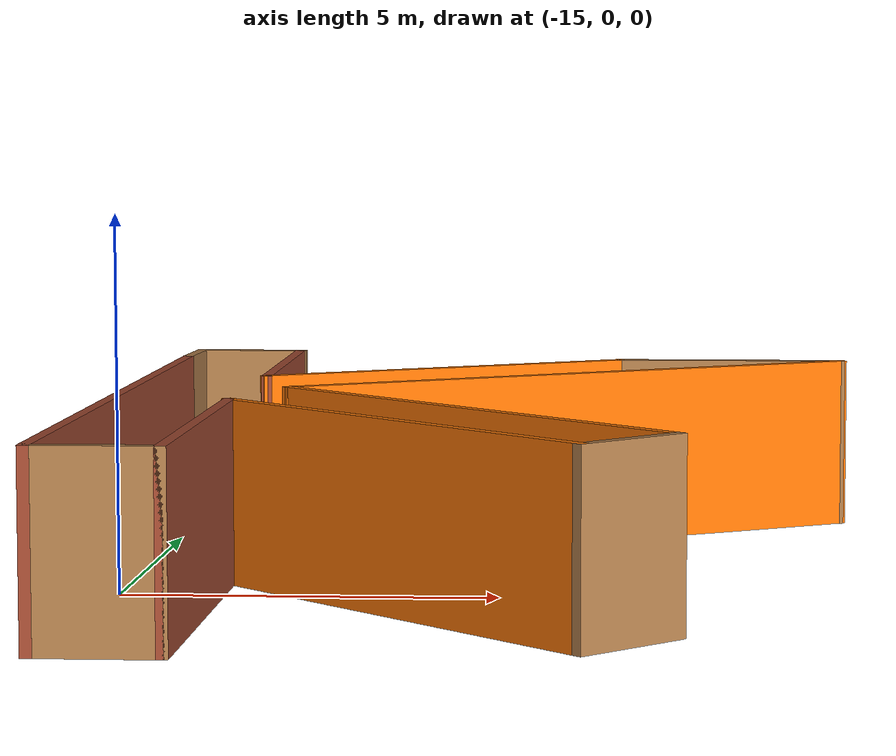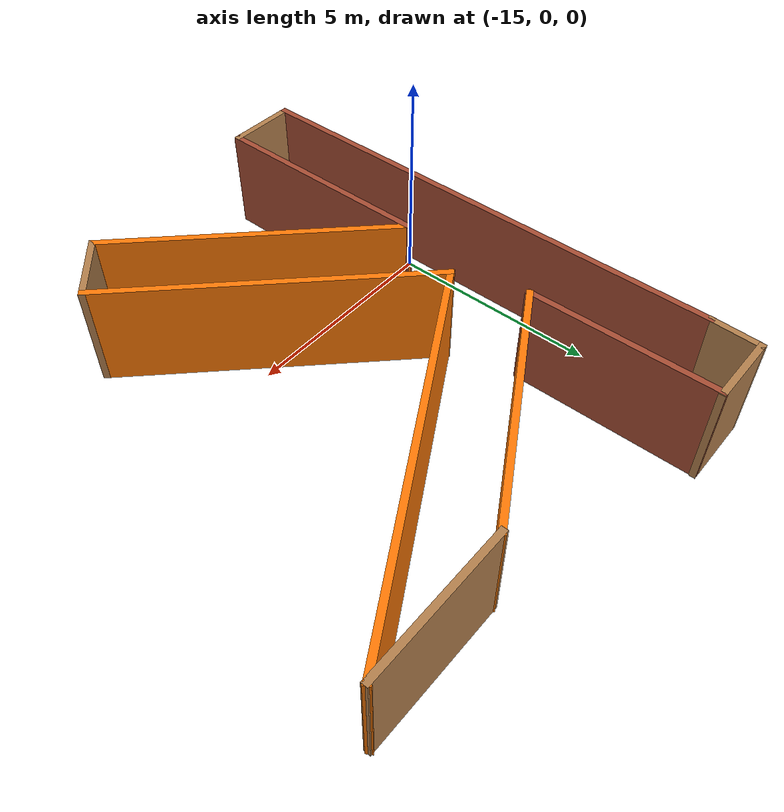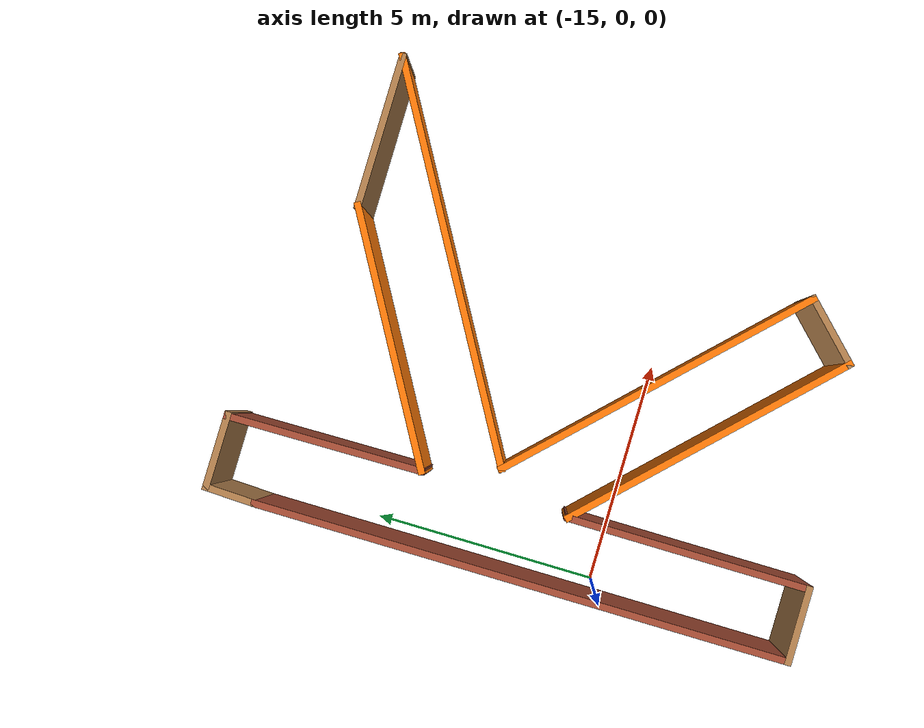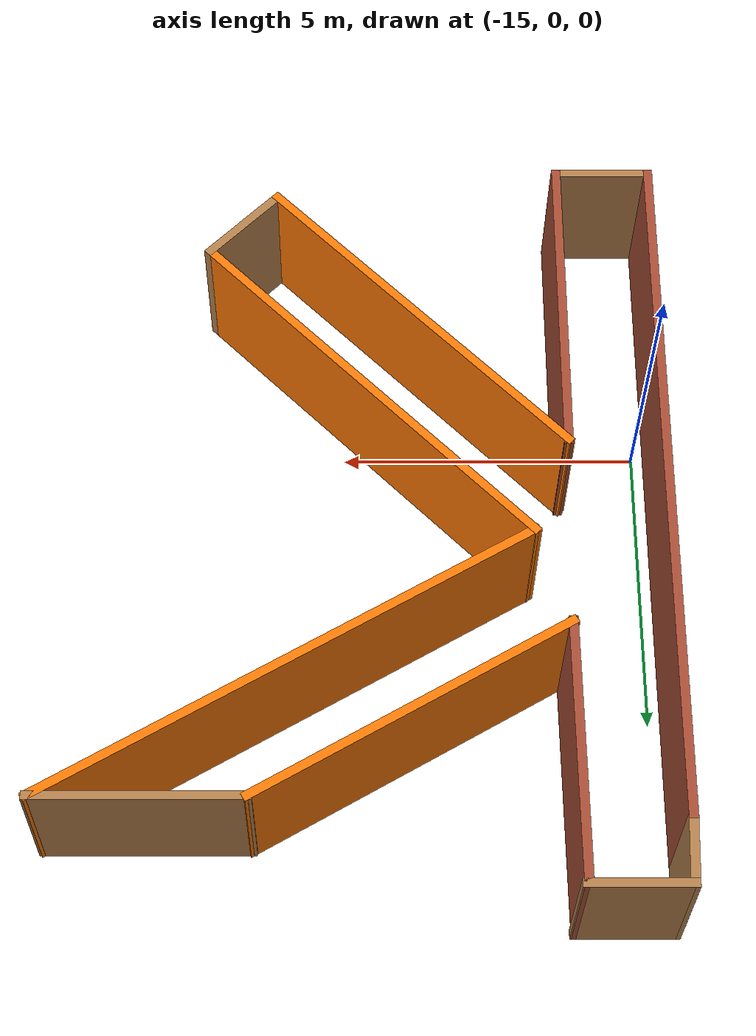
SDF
<?xml version='1.0'?>
<sdf version='1.6'>
  <model name='k_map'>
    <pose frame=''>-10.2215 2.08291 0 0 -0 0</pose>
    <link name='Wall_0'>
      <collision name='Wall_0_Collision'>
        <geometry>
          <box>
            <size>12 0.15 2.5</size>
          </box>
        </geometry>
        <pose frame=''>0 0 1.25 0 -0 0</pose>
      </collision>
      <visual name='Wall_0_Visual'>
        <pose frame=''>0 0 1.25 0 -0 0</pose>
        <geometry>
          <box>
            <size>12 0.15 2.5</size>
          </box>
        </geometry>
        <material>
          <script>
            <uri>file://media/materials/scripts/gazebo.material</uri>
            <name>Gazebo/Bricks</name>
          </script>
          <ambient>1 1 1 1</ambient>
        </material>
        <meta>
          <layer>0</layer>
        </meta>
      </visual>
      <pose frame=''>-5.05323 -0.546651 0 0 0 -1.5708</pose>
    </link>
    <link name='Wall_1'>
      <collision name='Wall_1_Collision'>
        <geometry>
          <box>
            <size>1.75 0.15 2.5</size>
          </box>
        </geometry>
        <pose frame=''>0 0 1.25 0 -0 0</pose>
      </collision>
      <visual name='Wall_1_Visual'>
        <pose frame=''>0 0 1.25 0 -0 0</pose>
        <geometry>
          <box>
            <size>1.75 0.15 2.5</size>
          </box>
        </geometry>
        <material>
          <script>
            <uri>file://media/materials/scripts/gazebo.material</uri>
            <name>Gazebo/Wood</name>
          </script>
          <ambient>1 1 1 1</ambient>
        </material>
        <meta>
          <layer>0</layer>
        </meta>
      </visual>
      <pose frame=''>-4.25323 -6.47165 0 0 -0 0</pose>
    </link>
    <link name='Wall_10'>
      <collision name='Wall_10_Collision'>
        <geometry>
          <box>
            <size>1.75 0.15 2.5</size>
          </box>
        </geometry>
        <pose frame=''>0 0 1.25 0 -0 0</pose>
      </collision>
      <visual name='Wall_10_Visual'>
        <pose frame=''>0 0 1.25 0 -0 0</pose>
        <geometry>
          <box>
            <size>1.75 0.15 2.5</size>
          </box>
        </geometry>
        <material>
          <script>
            <uri>file://media/materials/scripts/gazebo.material</uri>
            <name>Gazebo/Wood</name>
          </script>
          <ambient>1 1 1 1</ambient>
        </material>
        <meta>
          <layer>0</layer>
        </meta>
      </visual>
      <pose frame=''>-4.21074 6.46879 0 0 -0 3.14159</pose>
    </link>
    <link name='Wall_14'>
      <collision name='Wall_14_Collision'>
        <geometry>
          <box>
            <size>1.24127 0.15 2.5</size>
          </box>
        </geometry>
        <pose frame=''>0 0 1.25 0 -0 0</pose>
      </collision>
      <visual name='Wall_14_Visual'>
        <pose frame=''>0 0 1.25 0 -0 0</pose>
        <geometry>
          <box>
            <size>1.24127 0.15 2.5</size>
          </box>
        </geometry>
        <material>
          <script>
            <uri>file://media/materials/scripts/gazebo.material</uri>
            <name>Gazebo/Wood</name>
          </script>
          <ambient>1 1 1 1</ambient>
        </material>
        <meta>
          <layer>0</layer>
        </meta>
      </visual>
      <pose frame=''>-5.03198 5.92357 0 0 -0 1.53185</pose>
    </link>
    <link name='Wall_2'>
      <collision name='Wall_2_Collision'>
        <geometry>
          <box>
            <size>5.5 0.15 2.5</size>
          </box>
        </geometry>
        <pose frame=''>0 0 1.25 0 -0 0</pose>
      </collision>
      <visual name='Wall_2_Visual'>
        <pose frame=''>0 0 1.25 0 -0 0</pose>
        <geometry>
          <box>
            <size>5.5 0.15 2.5</size>
          </box>
        </geometry>
        <material>
          <script>
            <uri>file://media/materials/scripts/gazebo.material</uri>
            <name>Gazebo/Bricks</name>
          </script>
          <ambient>1 1 1 1</ambient>
        </material>
        <meta>
          <layer>0</layer>
        </meta>
      </visual>
      <pose frame=''>-3.45323 -3.79665 0 0 -0 1.5708</pose>
    </link>
    <link name='Wall_3'>
      <collision name='Wall_3_Collision'>
        <geometry>
          <box>
            <size>7 0.15 2.5</size>
          </box>
        </geometry>
        <pose frame=''>0 0 1.25 0 -0 0</pose>
      </collision>
      <visual name='Wall_3_Visual'>
        <pose frame=''>0 0 1.25 0 -0 0</pose>
        <geometry>
          <box>
            <size>7 0.15 2.5</size>
          </box>
        </geometry>
        <material>
          <script>
            <uri>file://media/materials/scripts/gazebo.material</uri>
            <name>Gazebo/Grey</name>
          </script>
          <ambient>0.996078 0.47451 0.0196078 1</ambient>
        </material>
        <meta>
          <layer>0</layer>
        </meta>
      </visual>
      <pose frame=''>-1.03139 -3.54349 0 0 0 -0.785398</pose>
    </link>
    <link name='Wall_4'>
      <collision name='Wall_4_Collision'>
        <geometry>
          <box>
            <size>1.75 0.15 2.5</size>
          </box>
        </geometry>
        <pose frame=''>0 0 1.25 0 -0 0</pose>
      </collision>
      <visual name='Wall_4_Visual'>
        <pose frame=''>0 0 1.25 0 -0 0</pose>
        <geometry>
          <box>
            <size>1.75 0.15 2.5</size>
          </box>
        </geometry>
        <material>
          <script>
            <uri>file://media/materials/scripts/gazebo.material</uri>
            <name>Gazebo/Wood</name>
          </script>
          <ambient>1 1 1 1</ambient>
        </material>
        <meta>
          <layer>0</layer>
        </meta>
      </visual>
      <pose frame=''>1.95614 -5.39965 0 0 -0 0.785398</pose>
    </link>
    <link name='Wall_5'>
      <collision name='Wall_5_Collision'>
        <geometry>
          <box>
            <size>7.75 0.15 2.5</size>
          </box>
        </geometry>
        <pose frame=''>0 0 1.25 0 -0 0</pose>
      </collision>
      <visual name='Wall_5_Visual'>
        <pose frame=''>0 0 1.25 0 -0 0</pose>
        <geometry>
          <box>
            <size>7.75 0.15 2.5</size>
          </box>
        </geometry>
        <material>
          <script>
            <uri>file://media/materials/scripts/gazebo.material</uri>
            <name>Gazebo/Grey</name>
          </script>
          <ambient>0.996078 0.47451 0.0196078 1</ambient>
        </material>
        <meta>
          <layer>0</layer>
        </meta>
      </visual>
      <pose frame=''>-0.165184 -2.14696 0 0 -0 2.35619</pose>
    </link>
    <link name='Wall_6'>
      <collision name='Wall_6_Collision'>
        <geometry>
          <box>
            <size>9.25 0.15 2.5</size>
          </box>
        </geometry>
        <pose frame=''>0 0 1.25 0 -0 0</pose>
      </collision>
      <visual name='Wall_6_Visual'>
        <pose frame=''>0 0 1.25 0 -0 0</pose>
        <geometry>
          <box>
            <size>9.25 0.15 2.5</size>
          </box>
        </geometry>
        <material>
          <script>
            <uri>file://media/materials/scripts/gazebo.material</uri>
            <name>Gazebo/Grey</name>
          </script>
          <ambient>0.996078 0.47451 0.0196078 1</ambient>
        </material>
        <meta>
          <layer>0</layer>
        </meta>
      </visual>
      <pose frame=''>1.08823 2.81505 0 0 -0 0.523599</pose>
    </link>
    <link name='Wall_7'>
      <collision name='Wall_7_Collision'>
        <geometry>
          <box>
            <size>3.5 0.15 2.5</size>
          </box>
        </geometry>
        <pose frame=''>0 0 1.25 0 -0 0</pose>
      </collision>
      <visual name='Wall_7_Visual'>
        <pose frame=''>0 0 1.25 0 -0 0</pose>
        <geometry>
          <box>
            <size>3.5 0.15 2.5</size>
          </box>
        </geometry>
        <material>
          <script>
            <uri>file://media/materials/scripts/gazebo.material</uri>
            <name>Gazebo/Wood</name>
          </script>
          <ambient>1 1 1 1</ambient>
        </material>
        <meta>
          <layer>0</layer>
        </meta>
      </visual>
      <pose frame=''>3.35364 5.09005 0 0 -0 3.14159</pose>
    </link>
    <link name='Wall_8'>
      <collision name='Wall_8_Collision'>
        <geometry>
          <box>
            <size>6 0.15 2.5</size>
          </box>
        </geometry>
        <pose frame=''>0 0 1.25 0 -0 0</pose>
      </collision>
      <visual name='Wall_8_Visual'>
        <pose frame=''>0 0 1.25 0 -0 0</pose>
        <geometry>
          <box>
            <size>6 0.15 2.5</size>
          </box>
        </geometry>
        <material>
          <script>
            <uri>file://media/materials/scripts/gazebo.material</uri>
            <name>Gazebo/Grey</name>
          </script>
          <ambient>0.996078 0.47451 0.0196078 1</ambient>
        </material>
        <meta>
          <layer>0</layer>
        </meta>
      </visual>
      <pose frame=''>-0.854482 3.62755 0 0 0 -2.61799</pose>
    </link>
    <link name='Wall_9'>
      <collision name='Wall_9_Collision'>
        <geometry>
          <box>
            <size>4.45399 0.15 2.5</size>
          </box>
        </geometry>
        <pose frame=''>0 0 1.25 0 -0 0</pose>
      </collision>
      <visual name='Wall_9_Visual'>
        <pose frame=''>0 0 1.25 0 -0 0</pose>
        <geometry>
          <box>
            <size>4.45399 0.15 2.5</size>
          </box>
        </geometry>
        <material>
          <script>
            <uri>file://media/materials/scripts/gazebo.material</uri>
            <name>Gazebo/Bricks</name>
          </script>
          <ambient>1 1 1 1</ambient>
        </material>
        <meta>
          <layer>0</layer>
        </meta>
      </visual>
      <pose frame=''>-3.41074 4.31692 0 0 -0 1.58154</pose>
    </link>
    <static>1</static>
  </model>
</sdf>
